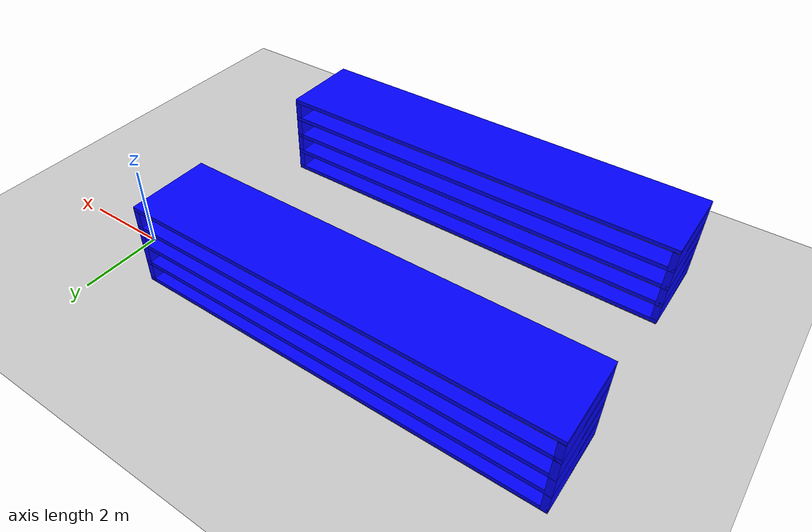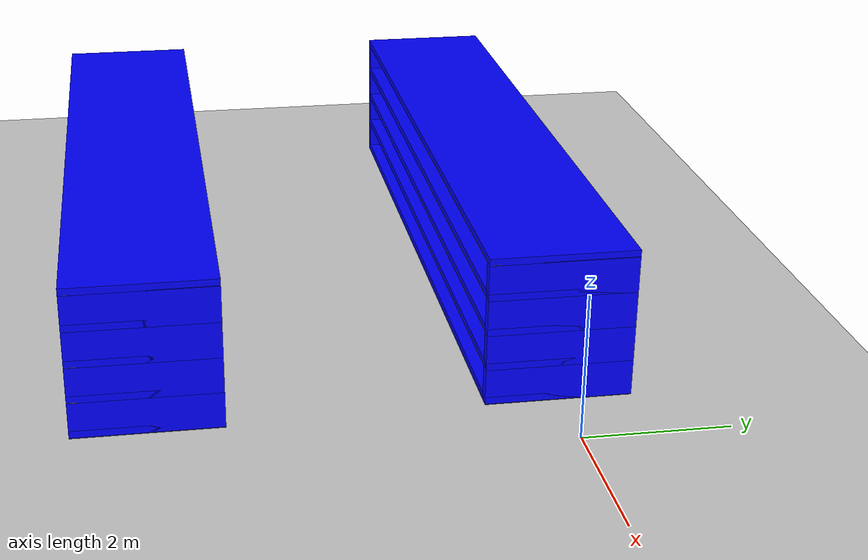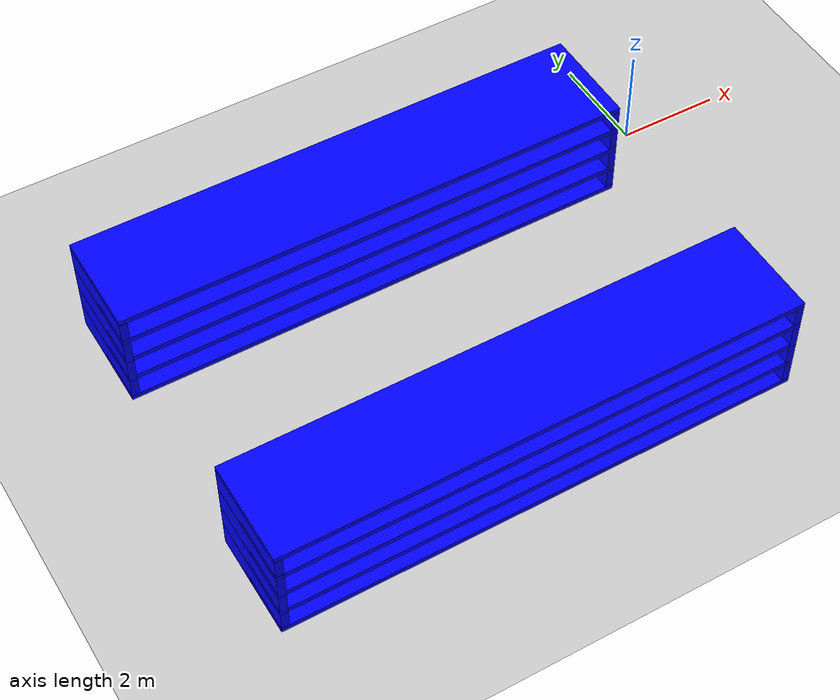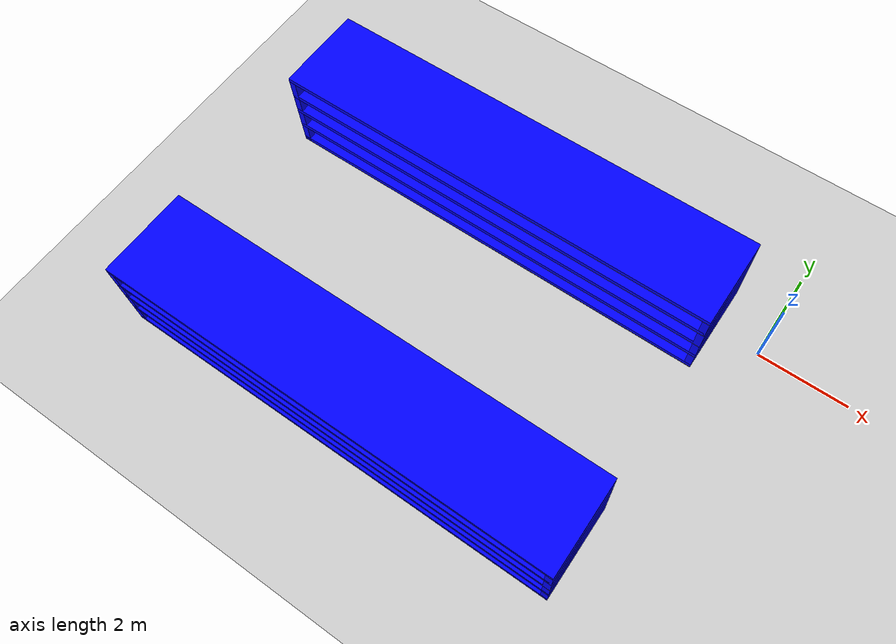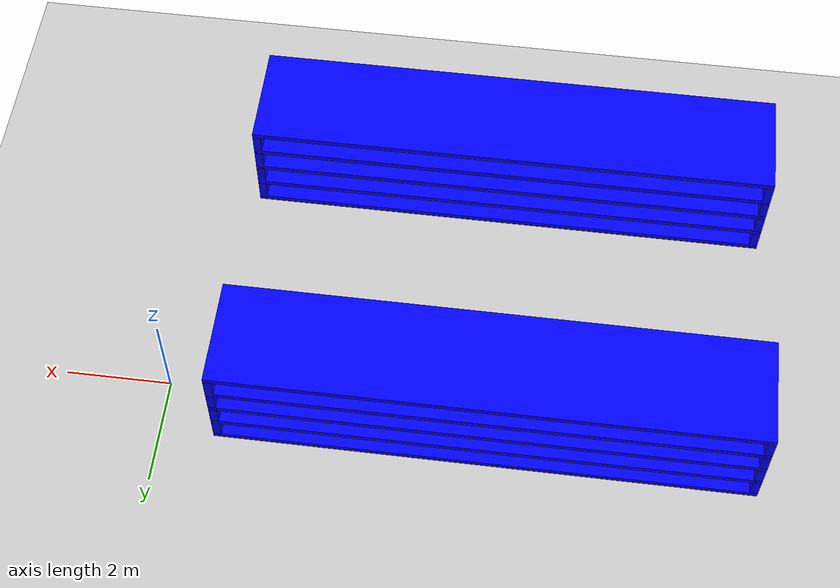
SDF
<sdf version="1.6">
 <world name="default">
  <model name="ground_plane">
   <static>1</static>
   <link name="link">
    <collision name="collision">
     <geometry><plane><normal>0 0 1</normal><size>100 100</size></plane></geometry>
     <surface><friction><ode><mu>100</mu><mu2>50</mu2></ode></friction></surface>
    </collision>
    <visual name="visual">
     <cast_shadows>0</cast_shadows>
     <geometry><plane><normal>0 0 1</normal><size>100 100</size></plane></geometry>
     <material>
      <script><uri>file://media/materials/scripts/gazebo.material</uri><name>Gazebo/Grey</name></script>
     </material>
    </visual>
   </link>
  </model>
  <model name="blue_shelf">
   <pose>-6.00982 -0.023754 0 0 -0 0</pose>
   <link name="Floor_18">
    <collision name="Floor_18_Collision">
     <geometry><box><size>10 2 0.1</size></box></geometry>
     <pose>0 0 0.05 0 -0 0</pose>
    </collision>
    <visual name="Floor_18_Visual">
     <pose>0 0 0.05 0 -0 0</pose>
     <geometry><box><size>10 2 0.1</size></box></geometry>
     <material>
      <script><uri>file://media/materials/scripts/gazebo.material</uri><name>Gazebo/Grey</name></script>
      <ambient>0 0 1 1</ambient>
     </material>
    </visual>
    <pose>0 0 0.01 0 -0 0</pose>
   </link>
   <link name="Floor_23">
    <collision name="Floor_23_Collision">
     <geometry><box><size>10 2 0.1</size></box></geometry>
     <pose>0 0 0.05 0 -0 0</pose>
    </collision>
    <visual name="Floor_23_Visual">
     <pose>0 0 0.05 0 -0 0</pose>
     <geometry><box><size>10 2 0.1</size></box></geometry>
     <material>
      <script><uri>file://media/materials/scripts/gazebo.material</uri><name>Gazebo/Grey</name></script>
      <ambient>0 0 1 1</ambient>
     </material>
    </visual>
    <pose>0 0 0.51 0 -0 0</pose>
   </link>
   <link name="Floor_24">
    <collision name="Floor_24_Collision">
     <geometry><box><size>10 2 0.1</size></box></geometry>
     <pose>0 0 0.05 0 -0 0</pose>
    </collision>
    <visual name="Floor_24_Visual">
     <pose>0 0 0.05 0 -0 0</pose>
     <geometry><box><size>10 2 0.1</size></box></geometry>
     <material>
      <script><uri>file://media/materials/scripts/gazebo.material</uri><name>Gazebo/Grey</name></script>
      <ambient>0 0 1 1</ambient>
     </material>
    </visual>
    <pose>0 0 1.01 0 -0 0</pose>
   </link>
   <link name="Floor_25">
    <collision name="Floor_25_Collision">
     <geometry><box><size>10 2 0.1</size></box></geometry>
     <pose>0 0 0.05 0 -0 0</pose>
    </collision>
    <visual name="Floor_25_Visual">
     <pose>0 0 0.05 0 -0 0</pose>
     <geometry><box><size>10 2 0.1</size></box></geometry>
     <material>
      <script><uri>file://media/materials/scripts/gazebo.material</uri><name>Gazebo/Grey</name></script>
      <ambient>0 0 1 1</ambient>
     </material>
    </visual>
    <pose>0 0 1.51 0 -0 0</pose>
   </link>
   <link name="Floor_26">
    <collision name="Floor_26_Collision">
     <geometry><box><size>10 2 0.1</size></box></geometry>
     <pose>0 0 0.05 0 -0 0</pose>
    </collision>
    <visual name="Floor_26_Visual">
     <pose>0 0 0.05 0 -0 0</pose>
     <geometry><box><size>10 2 0.1</size></box></geometry>
     <material>
      <script><uri>file://media/materials/scripts/gazebo.material</uri><name>Gazebo/Grey</name></script>
      <ambient>0 0 1 1</ambient>
     </material>
    </visual>
    <pose>0 0 2.01 0 -0 0</pose>
   </link>
   <link name="Wall_111">
    <collision name="Wall_111_Collision">
     <geometry><box><size>10 0.15 0.01</size></box></geometry>
     <pose>0 0 0.005 0 -0 0</pose>
    </collision>
    <visual name="Wall_111_Visual">
     <pose>0 0 0.005 0 -0 0</pose>
     <geometry><box><size>10 0.15 0.01</size></box></geometry>
     <material>
      <script><uri>file://media/materials/scripts/gazebo.material</uri><name>Gazebo/Grey</name></script>
      <ambient>1 1 1 1</ambient>
     </material>
    </visual>
    <pose>0 0.925 0.51 0 -0 0</pose>
   </link>
   <link name="Wall_112">
    <collision name="Wall_112_Collision">
     <geometry><box><size>2 0.15 0.5</size></box></geometry>
     <pose>0 0 0.25 0 -0 0</pose>
    </collision>
    <visual name="Wall_112_Visual">
     <pose>0 0 0.25 0 -0 0</pose>
     <geometry><box><size>2 0.15 0.5</size></box></geometry>
     <material>
      <script><uri>file://media/materials/scripts/gazebo.material</uri><name>Gazebo/Grey</name></script>
      <ambient>0 0 1 1</ambient>
     </material>
    </visual>
    <pose>4.925 0 0.51 0 0 -1.5708</pose>
   </link>
   <link name="Wall_113">
    <collision name="Wall_113_Collision">
     <geometry><box><size>10 0.15 0.01</size></box></geometry>
     <pose>0 0 0.005 0 -0 0</pose>
    </collision>
    <visual name="Wall_113_Visual">
     <pose>0 0 0.005 0 -0 0</pose>
     <geometry><box><size>10 0.15 0.01</size></box></geometry>
     <material>
      <script><uri>file://media/materials/scripts/gazebo.material</uri><name>Gazebo/Grey</name></script>
      <ambient>1 1 1 1</ambient>
     </material>
    </visual>
    <pose>0 -0.925 0.51 0 -0 3.14159</pose>
   </link>
   <link name="Wall_114">
    <collision name="Wall_114_Collision">
     <geometry><box><size>2 0.15 0.5</size></box></geometry>
     <pose>0 0 0.25 0 -0 0</pose>
    </collision>
    <visual name="Wall_114_Visual">
     <pose>0 0 0.25 0 -0 0</pose>
     <geometry><box><size>2 0.15 0.5</size></box></geometry>
     <material>
      <script><uri>file://media/materials/scripts/gazebo.material</uri><name>Gazebo/Grey</name></script>
      <ambient>0 0 1 1</ambient>
     </material>
    </visual>
    <pose>-4.925 0 0.51 0 -0 1.5708</pose>
   </link>
   <link name="Wall_115">
    <collision name="Wall_115_Collision">
     <geometry><box><size>10 0.15 0.01</size></box></geometry>
     <pose>0 0 0.005 0 -0 0</pose>
    </collision>
    <visual name="Wall_115_Visual">
     <pose>0 0 0.005 0 -0 0</pose>
     <geometry><box><size>10 0.15 0.01</size></box></geometry>
     <material>
      <script><uri>file://media/materials/scripts/gazebo.material</uri><name>Gazebo/Grey</name></script>
      <ambient>1 1 1 1</ambient>
     </material>
    </visual>
    <pose>0 0.925 1.01 0 -0 0</pose>
   </link>
   <link name="Wall_116">
    <collision name="Wall_116_Collision">
     <geometry><box><size>2 0.15 0.5</size></box></geometry>
     <pose>0 0 0.25 0 -0 0</pose>
    </collision>
    <visual name="Wall_116_Visual">
     <pose>0 0 0.25 0 -0 0</pose>
     <geometry><box><size>2 0.15 0.5</size></box></geometry>
     <material>
      <script><uri>file://media/materials/scripts/gazebo.material</uri><name>Gazebo/Grey</name></script>
      <ambient>0 0 1 1</ambient>
     </material>
    </visual>
    <pose>4.925 0 1.01 0 0 -1.5708</pose>
   </link>
   <link name="Wall_117">
    <collision name="Wall_117_Collision">
     <geometry><box><size>10 0.15 0.01</size></box></geometry>
     <pose>0 0 0.005 0 -0 0</pose>
    </collision>
    <visual name="Wall_117_Visual">
     <pose>0 0 0.005 0 -0 0</pose>
     <geometry><box><size>10 0.15 0.01</size></box></geometry>
     <material>
      <script><uri>file://media/materials/scripts/gazebo.material</uri><name>Gazebo/Grey</name></script>
      <ambient>1 1 1 1</ambient>
     </material>
    </visual>
    <pose>0 -0.925 1.01 0 -0 3.14159</pose>
   </link>
   <link name="Wall_118">
    <collision name="Wall_118_Collision">
     <geometry><box><size>2 0.15 0.5</size></box></geometry>
     <pose>0 0 0.25 0 -0 0</pose>
    </collision>
    <visual name="Wall_118_Visual">
     <pose>0 0 0.25 0 -0 0</pose>
     <geometry><box><size>2 0.15 0.5</size></box></geometry>
     <material>
      <script><uri>file://media/materials/scripts/gazebo.material</uri><name>Gazebo/Grey</name></script>
      <ambient>0 0 1 1</ambient>
     </material>
    </visual>
    <pose>-4.925 0 1.01 0 -0 1.5708</pose>
   </link>
   <link name="Wall_119">
    <collision name="Wall_119_Collision">
     <geometry><box><size>10 0.15 0.01</size></box></geometry>
     <pose>0 0 0.005 0 -0 0</pose>
    </collision>
    <visual name="Wall_119_Visual">
     <pose>0 0 0.005 0 -0 0</pose>
     <geometry><box><size>10 0.15 0.01</size></box></geometry>
     <material>
      <script><uri>file://media/materials/scripts/gazebo.material</uri><name>Gazebo/Grey</name></script>
      <ambient>1 1 1 1</ambient>
     </material>
    </visual>
    <pose>0 0.925 1.51 0 -0 0</pose>
   </link>
   <link name="Wall_120">
    <collision name="Wall_120_Collision">
     <geometry><box><size>2 0.15 0.5</size></box></geometry>
     <pose>0 0 0.25 0 -0 0</pose>
    </collision>
    <visual name="Wall_120_Visual">
     <pose>0 0 0.25 0 -0 0</pose>
     <geometry><box><size>2 0.15 0.5</size></box></geometry>
     <material>
      <script><uri>file://media/materials/scripts/gazebo.material</uri><name>Gazebo/Grey</name></script>
      <ambient>0 0 1 1</ambient>
     </material>
    </visual>
    <pose>4.925 0 1.51 0 0 -1.5708</pose>
   </link>
   <link name="Wall_121">
    <collision name="Wall_121_Collision">
     <geometry><box><size>10 0.15 0.01</size></box></geometry>
     <pose>0 0 0.005 0 -0 0</pose>
    </collision>
    <visual name="Wall_121_Visual">
     <pose>0 0 0.005 0 -0 0</pose>
     <geometry><box><size>10 0.15 0.01</size></box></geometry>
     <material>
      <script><uri>file://media/materials/scripts/gazebo.material</uri><name>Gazebo/Grey</name></script>
      <ambient>1 1 1 1</ambient>
     </material>
    </visual>
    <pose>0 -0.925 1.51 0 -0 3.14159</pose>
   </link>
   <link name="Wall_122">
    <collision name="Wall_122_Collision">
     <geometry><box><size>2 0.15 0.5</size></box></geometry>
     <pose>0 0 0.25 0 -0 0</pose>
    </collision>
    <visual name="Wall_122_Visual">
     <pose>0 0 0.25 0 -0 0</pose>
     <geometry><box><size>2 0.15 0.5</size></box></geometry>
     <material>
      <script><uri>file://media/materials/scripts/gazebo.material</uri><name>Gazebo/Grey</name></script>
      <ambient>0 0 1 1</ambient>
     </material>
    </visual>
    <pose>-4.925 0 1.51 0 -0 1.5708</pose>
   </link>
   <link name="Wall_123">
    <collision name="Wall_123_Collision">
     <geometry><box><size>10 0.15 0.01</size></box></geometry>
     <pose>0 0 0.005 0 -0 0</pose>
    </collision>
    <visual name="Wall_123_Visual">
     <pose>0 0 0.005 0 -0 0</pose>
     <geometry><box><size>10 0.15 0.01</size></box></geometry>
     <material>
      <script><uri>file://media/materials/scripts/gazebo.material</uri><name>Gazebo/Grey</name></script>
      <ambient>1 1 1 1</ambient>
     </material>
    </visual>
    <pose>0 0.925 2.01 0 -0 0</pose>
   </link>
   <link name="Wall_124">
    <collision name="Wall_124_Collision">
     <geometry><box><size>2 0.15 0.01</size></box></geometry>
     <pose>0 0 0.005 0 -0 0</pose>
    </collision>
    <visual name="Wall_124_Visual">
     <pose>0 0 0.005 0 -0 0</pose>
     <geometry><box><size>2 0.15 0.01</size></box></geometry>
     <material>
      <script><uri>file://media/materials/scripts/gazebo.material</uri><name>Gazebo/Grey</name></script>
      <ambient>0 0 1 1</ambient>
     </material>
    </visual>
    <pose>4.925 0 2.01 0 0 -1.5708</pose>
   </link>
   <link name="Wall_125">
    <collision name="Wall_125_Collision">
     <geometry><box><size>10 0.15 0.01</size></box></geometry>
     <pose>0 0 0.005 0 -0 0</pose>
    </collision>
    <visual name="Wall_125_Visual">
     <pose>0 0 0.005 0 -0 0</pose>
     <geometry><box><size>10 0.15 0.01</size></box></geometry>
     <material>
      <script><uri>file://media/materials/scripts/gazebo.material</uri><name>Gazebo/Grey</name></script>
      <ambient>1 1 1 1</ambient>
     </material>
    </visual>
    <pose>0 -0.925 2.01 0 -0 3.14159</pose>
   </link>
   <link name="Wall_126">
    <collision name="Wall_126_Collision">
     <geometry><box><size>2 0.15 0.01</size></box></geometry>
     <pose>0 0 0.005 0 -0 0</pose>
    </collision>
    <visual name="Wall_126_Visual">
     <pose>0 0 0.005 0 -0 0</pose>
     <geometry><box><size>2 0.15 0.01</size></box></geometry>
     <material>
      <script><uri>file://media/materials/scripts/gazebo.material</uri><name>Gazebo/Grey</name></script>
      <ambient>0 0 1 1</ambient>
     </material>
    </visual>
    <pose>-4.925 0 2.01 0 -0 1.5708</pose>
   </link>
   <link name="Wall_60">
    <collision name="Wall_60_Collision">
     <geometry><box><size>10 0.15 0.01</size></box></geometry>
     <pose>0 0 0.005 0 -0 0</pose>
    </collision>
    <visual name="Wall_60_Visual">
     <pose>0 0 0.005 0 -0 0</pose>
     <geometry><box><size>10 0.15 0.01</size></box></geometry>
     <material>
      <script><uri>file://media/materials/scripts/gazebo.material</uri><name>Gazebo/Grey</name></script>
      <ambient>0 0 0.498039 1</ambient>
     </material>
    </visual>
    <pose>0 0.925 0 0 -0 0</pose>
   </link>
   <link name="Wall_61">
    <collision name="Wall_61_Collision">
     <geometry><box><size>2 0.15 0.01</size></box></geometry>
     <pose>0 0 0.005 0 -0 0</pose>
    </collision>
    <visual name="Wall_61_Visual">
     <pose>0 0 0.005 0 -0 0</pose>
     <geometry><box><size>2 0.15 0.01</size></box></geometry>
     <material>
      <script><uri>file://media/materials/scripts/gazebo.material</uri><name>Gazebo/Grey</name></script>
      <ambient>0 0 0.498039 1</ambient>
     </material>
    </visual>
    <pose>4.925 0 0 0 0 -1.5708</pose>
   </link>
   <link name="Wall_62">
    <collision name="Wall_62_Collision">
     <geometry><box><size>10 0.15 0.01</size></box></geometry>
     <pose>0 0 0.005 0 -0 0</pose>
    </collision>
    <visual name="Wall_62_Visual">
     <pose>0 0 0.005 0 -0 0</pose>
     <geometry><box><size>10 0.15 0.01</size></box></geometry>
     <material>
      <script><uri>file://media/materials/scripts/gazebo.material</uri><name>Gazebo/Grey</name></script>
      <ambient>0 0 0.498039 1</ambient>
     </material>
    </visual>
    <pose>0 -0.925 0 0 -0 3.14159</pose>
   </link>
   <link name="Wall_63">
    <collision name="Wall_63_Collision">
     <geometry><box><size>2 0.15 0.01</size></box></geometry>
     <pose>0 0 0.005 0 -0 0</pose>
    </collision>
    <visual name="Wall_63_Visual">
     <pose>0 0 0.005 0 -0 0</pose>
     <geometry><box><size>2 0.15 0.01</size></box></geometry>
     <material>
      <script><uri>file://media/materials/scripts/gazebo.material</uri><name>Gazebo/Grey</name></script>
      <ambient>0 0 0.498039 1</ambient>
     </material>
    </visual>
    <pose>-4.925 0 0 0 -0 1.5708</pose>
   </link>
   <link name="Wall_91">
    <collision name="Wall_91_Collision">
     <geometry><box><size>10 0.15 0.01</size></box></geometry>
     <pose>0 0 0.005 0 -0 0</pose>
    </collision>
    <visual name="Wall_91_Visual">
     <pose>0 0 0.005 0 -0 0</pose>
     <geometry><box><size>10 0.15 0.01</size></box></geometry>
     <material>
      <script><uri>file://media/materials/scripts/gazebo.material</uri><name>Gazebo/Grey</name></script>
      <ambient>1 1 1 1</ambient>
     </material>
    </visual>
    <pose>0 0.925 0.01 0 -0 0</pose>
   </link>
   <link name="Wall_92">
    <collision name="Wall_92_Collision">
     <geometry><box><size>2 0.15 0.5</size></box></geometry>
     <pose>0 0 0.25 0 -0 0</pose>
    </collision>
    <visual name="Wall_92_Visual">
     <pose>0 0 0.25 0 -0 0</pose>
     <geometry><box><size>2 0.15 0.5</size></box></geometry>
     <material>
      <script><uri>file://media/materials/scripts/gazebo.material</uri><name>Gazebo/Grey</name></script>
      <ambient>0 0 1 1</ambient>
     </material>
    </visual>
    <pose>4.925 0 0.01 0 0 -1.5708</pose>
   </link>
   <link name="Wall_93">
    <collision name="Wall_93_Collision">
     <geometry><box><size>10 0.15 0.01</size></box></geometry>
     <pose>0 0 0.005 0 -0 0</pose>
    </collision>
    <visual name="Wall_93_Visual">
     <pose>0 0 0.005 0 -0 0</pose>
     <geometry><box><size>10 0.15 0.01</size></box></geometry>
     <material>
      <script><uri>file://media/materials/scripts/gazebo.material</uri><name>Gazebo/Grey</name></script>
      <ambient>1 1 1 1</ambient>
     </material>
    </visual>
    <pose>0 -0.925 0.01 0 -0 3.14159</pose>
   </link>
   <link name="Wall_94">
    <collision name="Wall_94_Collision">
     <geometry><box><size>2 0.15 0.5</size></box></geometry>
     <pose>0 0 0.25 0 -0 0</pose>
    </collision>
    <visual name="Wall_94_Visual">
     <pose>0 0 0.25 0 -0 0</pose>
     <geometry><box><size>2 0.15 0.5</size></box></geometry>
     <material>
      <script><uri>file://media/materials/scripts/gazebo.material</uri><name>Gazebo/Grey</name></script>
      <ambient>0 0 1 1</ambient>
     </material>
    </visual>
    <pose>-4.925 0 0.01 0 -0 1.5708</pose>
   </link>
   <static>1</static>
  </model>
  <model name="blue_shelf_1">
   <pose>-5.9319 -5.4498 0 0 -0 0</pose>
   <link name="Floor_18">
    <collision name="Floor_18_Collision">
     <geometry><box><size>10 2 0.1</size></box></geometry>
     <pose>0 0 0.05 0 -0 0</pose>
    </collision>
    <visual name="Floor_18_Visual">
     <pose>0 0 0.05 0 -0 0</pose>
     <geometry><box><size>10 2 0.1</size></box></geometry>
     <material>
      <script><uri>file://media/materials/scripts/gazebo.material</uri><name>Gazebo/Grey</name></script>
      <ambient>0 0 1 1</ambient>
     </material>
    </visual>
    <pose>0 0 0.01 0 -0 0</pose>
   </link>
   <link name="Floor_23">
    <collision name="Floor_23_Collision">
     <geometry><box><size>10 2 0.1</size></box></geometry>
     <pose>0 0 0.05 0 -0 0</pose>
    </collision>
    <visual name="Floor_23_Visual">
     <pose>0 0 0.05 0 -0 0</pose>
     <geometry><box><size>10 2 0.1</size></box></geometry>
     <material>
      <script><uri>file://media/materials/scripts/gazebo.material</uri><name>Gazebo/Grey</name></script>
      <ambient>0 0 1 1</ambient>
     </material>
    </visual>
    <pose>0 0 0.51 0 -0 0</pose>
   </link>
   <link name="Floor_24">
    <collision name="Floor_24_Collision">
     <geometry><box><size>10 2 0.1</size></box></geometry>
     <pose>0 0 0.05 0 -0 0</pose>
    </collision>
    <visual name="Floor_24_Visual">
     <pose>0 0 0.05 0 -0 0</pose>
     <geometry><box><size>10 2 0.1</size></box></geometry>
     <material>
      <script><uri>file://media/materials/scripts/gazebo.material</uri><name>Gazebo/Grey</name></script>
      <ambient>0 0 1 1</ambient>
     </material>
    </visual>
    <pose>0 0 1.01 0 -0 0</pose>
   </link>
   <link name="Floor_25">
    <collision name="Floor_25_Collision">
     <geometry><box><size>10 2 0.1</size></box></geometry>
     <pose>0 0 0.05 0 -0 0</pose>
    </collision>
    <visual name="Floor_25_Visual">
     <pose>0 0 0.05 0 -0 0</pose>
     <geometry><box><size>10 2 0.1</size></box></geometry>
     <material>
      <script><uri>file://media/materials/scripts/gazebo.material</uri><name>Gazebo/Grey</name></script>
      <ambient>0 0 1 1</ambient>
     </material>
    </visual>
    <pose>0 0 1.51 0 -0 0</pose>
   </link>
   <link name="Floor_26">
    <collision name="Floor_26_Collision">
     <geometry><box><size>10 2 0.1</size></box></geometry>
     <pose>0 0 0.05 0 -0 0</pose>
    </collision>
    <visual name="Floor_26_Visual">
     <pose>0 0 0.05 0 -0 0</pose>
     <geometry><box><size>10 2 0.1</size></box></geometry>
     <material>
      <script><uri>file://media/materials/scripts/gazebo.material</uri><name>Gazebo/Grey</name></script>
      <ambient>0 0 1 1</ambient>
     </material>
    </visual>
    <pose>0 0 2.01 0 -0 0</pose>
   </link>
   <link name="Wall_111">
    <collision name="Wall_111_Collision">
     <geometry><box><size>10 0.15 0.01</size></box></geometry>
     <pose>0 0 0.005 0 -0 0</pose>
    </collision>
    <visual name="Wall_111_Visual">
     <pose>0 0 0.005 0 -0 0</pose>
     <geometry><box><size>10 0.15 0.01</size></box></geometry>
     <material>
      <script><uri>file://media/materials/scripts/gazebo.material</uri><name>Gazebo/Grey</name></script>
      <ambient>1 1 1 1</ambient>
     </material>
    </visual>
    <pose>0 0.925 0.51 0 -0 0</pose>
   </link>
   <link name="Wall_112">
    <collision name="Wall_112_Collision">
     <geometry><box><size>2 0.15 0.5</size></box></geometry>
     <pose>0 0 0.25 0 -0 0</pose>
    </collision>
    <visual name="Wall_112_Visual">
     <pose>0 0 0.25 0 -0 0</pose>
     <geometry><box><size>2 0.15 0.5</size></box></geometry>
     <material>
      <script><uri>file://media/materials/scripts/gazebo.material</uri><name>Gazebo/Grey</name></script>
      <ambient>0 0 1 1</ambient>
     </material>
    </visual>
    <pose>4.925 0 0.51 0 0 -1.5708</pose>
   </link>
   <link name="Wall_113">
    <collision name="Wall_113_Collision">
     <geometry><box><size>10 0.15 0.01</size></box></geometry>
     <pose>0 0 0.005 0 -0 0</pose>
    </collision>
    <visual name="Wall_113_Visual">
     <pose>0 0 0.005 0 -0 0</pose>
     <geometry><box><size>10 0.15 0.01</size></box></geometry>
     <material>
      <script><uri>file://media/materials/scripts/gazebo.material</uri><name>Gazebo/Grey</name></script>
      <ambient>1 1 1 1</ambient>
     </material>
    </visual>
    <pose>0 -0.925 0.51 0 -0 3.14159</pose>
   </link>
   <link name="Wall_114">
    <collision name="Wall_114_Collision">
     <geometry><box><size>2 0.15 0.5</size></box></geometry>
     <pose>0 0 0.25 0 -0 0</pose>
    </collision>
    <visual name="Wall_114_Visual">
     <pose>0 0 0.25 0 -0 0</pose>
     <geometry><box><size>2 0.15 0.5</size></box></geometry>
     <material>
      <script><uri>file://media/materials/scripts/gazebo.material</uri><name>Gazebo/Grey</name></script>
      <ambient>0 0 1 1</ambient>
     </material>
    </visual>
    <pose>-4.925 0 0.51 0 -0 1.5708</pose>
   </link>
   <link name="Wall_115">
    <collision name="Wall_115_Collision">
     <geometry><box><size>10 0.15 0.01</size></box></geometry>
     <pose>0 0 0.005 0 -0 0</pose>
    </collision>
    <visual name="Wall_115_Visual">
     <pose>0 0 0.005 0 -0 0</pose>
     <geometry><box><size>10 0.15 0.01</size></box></geometry>
     <material>
      <script><uri>file://media/materials/scripts/gazebo.material</uri><name>Gazebo/Grey</name></script>
      <ambient>1 1 1 1</ambient>
     </material>
    </visual>
    <pose>0 0.925 1.01 0 -0 0</pose>
   </link>
   <link name="Wall_116">
    <collision name="Wall_116_Collision">
     <geometry><box><size>2 0.15 0.5</size></box></geometry>
     <pose>0 0 0.25 0 -0 0</pose>
    </collision>
    <visual name="Wall_116_Visual">
     <pose>0 0 0.25 0 -0 0</pose>
     <geometry><box><size>2 0.15 0.5</size></box></geometry>
     <material>
      <script><uri>file://media/materials/scripts/gazebo.material</uri><name>Gazebo/Grey</name></script>
      <ambient>0 0 1 1</ambient>
     </material>
    </visual>
    <pose>4.925 0 1.01 0 0 -1.5708</pose>
   </link>
   <link name="Wall_117">
    <collision name="Wall_117_Collision">
     <geometry><box><size>10 0.15 0.01</size></box></geometry>
     <pose>0 0 0.005 0 -0 0</pose>
    </collision>
    <visual name="Wall_117_Visual">
     <pose>0 0 0.005 0 -0 0</pose>
     <geometry><box><size>10 0.15 0.01</size></box></geometry>
     <material>
      <script><uri>file://media/materials/scripts/gazebo.material</uri><name>Gazebo/Grey</name></script>
      <ambient>1 1 1 1</ambient>
     </material>
    </visual>
    <pose>0 -0.925 1.01 0 -0 3.14159</pose>
   </link>
   <link name="Wall_118">
    <collision name="Wall_118_Collision">
     <geometry><box><size>2 0.15 0.5</size></box></geometry>
     <pose>0 0 0.25 0 -0 0</pose>
    </collision>
    <visual name="Wall_118_Visual">
     <pose>0 0 0.25 0 -0 0</pose>
     <geometry><box><size>2 0.15 0.5</size></box></geometry>
     <material>
      <script><uri>file://media/materials/scripts/gazebo.material</uri><name>Gazebo/Grey</name></script>
      <ambient>0 0 1 1</ambient>
     </material>
    </visual>
    <pose>-4.925 0 1.01 0 -0 1.5708</pose>
   </link>
   <link name="Wall_119">
    <collision name="Wall_119_Collision">
     <geometry><box><size>10 0.15 0.01</size></box></geometry>
     <pose>0 0 0.005 0 -0 0</pose>
    </collision>
    <visual name="Wall_119_Visual">
     <pose>0 0 0.005 0 -0 0</pose>
     <geometry><box><size>10 0.15 0.01</size></box></geometry>
     <material>
      <script><uri>file://media/materials/scripts/gazebo.material</uri><name>Gazebo/Grey</name></script>
      <ambient>1 1 1 1</ambient>
     </material>
    </visual>
    <pose>0 0.925 1.51 0 -0 0</pose>
   </link>
   <link name="Wall_120">
    <collision name="Wall_120_Collision">
     <geometry><box><size>2 0.15 0.5</size></box></geometry>
     <pose>0 0 0.25 0 -0 0</pose>
    </collision>
    <visual name="Wall_120_Visual">
     <pose>0 0 0.25 0 -0 0</pose>
     <geometry><box><size>2 0.15 0.5</size></box></geometry>
     <material>
      <script><uri>file://media/materials/scripts/gazebo.material</uri><name>Gazebo/Grey</name></script>
      <ambient>0 0 1 1</ambient>
     </material>
    </visual>
    <pose>4.925 0 1.51 0 0 -1.5708</pose>
   </link>
   <link name="Wall_121">
    <collision name="Wall_121_Collision">
     <geometry><box><size>10 0.15 0.01</size></box></geometry>
     <pose>0 0 0.005 0 -0 0</pose>
    </collision>
    <visual name="Wall_121_Visual">
     <pose>0 0 0.005 0 -0 0</pose>
     <geometry><box><size>10 0.15 0.01</size></box></geometry>
     <material>
      <script><uri>file://media/materials/scripts/gazebo.material</uri><name>Gazebo/Grey</name></script>
      <ambient>1 1 1 1</ambient>
     </material>
    </visual>
    <pose>0 -0.925 1.51 0 -0 3.14159</pose>
   </link>
   <link name="Wall_122">
    <collision name="Wall_122_Collision">
     <geometry><box><size>2 0.15 0.5</size></box></geometry>
     <pose>0 0 0.25 0 -0 0</pose>
    </collision>
    <visual name="Wall_122_Visual">
     <pose>0 0 0.25 0 -0 0</pose>
     <geometry><box><size>2 0.15 0.5</size></box></geometry>
     <material>
      <script><uri>file://media/materials/scripts/gazebo.material</uri><name>Gazebo/Grey</name></script>
      <ambient>0 0 1 1</ambient>
     </material>
    </visual>
    <pose>-4.925 0 1.51 0 -0 1.5708</pose>
   </link>
   <link name="Wall_123">
    <collision name="Wall_123_Collision">
     <geometry><box><size>10 0.15 0.01</size></box></geometry>
     <pose>0 0 0.005 0 -0 0</pose>
    </collision>
    <visual name="Wall_123_Visual">
     <pose>0 0 0.005 0 -0 0</pose>
     <geometry><box><size>10 0.15 0.01</size></box></geometry>
     <material>
      <script><uri>file://media/materials/scripts/gazebo.material</uri><name>Gazebo/Grey</name></script>
      <ambient>1 1 1 1</ambient>
     </material>
    </visual>
    <pose>0 0.925 2.01 0 -0 0</pose>
   </link>
   <link name="Wall_124">
    <collision name="Wall_124_Collision">
     <geometry><box><size>2 0.15 0.01</size></box></geometry>
     <pose>0 0 0.005 0 -0 0</pose>
    </collision>
    <visual name="Wall_124_Visual">
     <pose>0 0 0.005 0 -0 0</pose>
     <geometry><box><size>2 0.15 0.01</size></box></geometry>
     <material>
      <script><uri>file://media/materials/scripts/gazebo.material</uri><name>Gazebo/Grey</name></script>
      <ambient>0 0 1 1</ambient>
     </material>
    </visual>
    <pose>4.925 0 2.01 0 0 -1.5708</pose>
   </link>
   <link name="Wall_125">
    <collision name="Wall_125_Collision">
     <geometry><box><size>10 0.15 0.01</size></box></geometry>
     <pose>0 0 0.005 0 -0 0</pose>
    </collision>
    <visual name="Wall_125_Visual">
     <pose>0 0 0.005 0 -0 0</pose>
     <geometry><box><size>10 0.15 0.01</size></box></geometry>
     <material>
      <script><uri>file://media/materials/scripts/gazebo.material</uri><name>Gazebo/Grey</name></script>
      <ambient>1 1 1 1</ambient>
     </material>
    </visual>
    <pose>0 -0.925 2.01 0 -0 3.14159</pose>
   </link>
   <link name="Wall_126">
    <collision name="Wall_126_Collision">
     <geometry><box><size>2 0.15 0.01</size></box></geometry>
     <pose>0 0 0.005 0 -0 0</pose>
    </collision>
    <visual name="Wall_126_Visual">
     <pose>0 0 0.005 0 -0 0</pose>
     <geometry><box><size>2 0.15 0.01</size></box></geometry>
     <material>
      <script><uri>file://media/materials/scripts/gazebo.material</uri><name>Gazebo/Grey</name></script>
      <ambient>0 0 1 1</ambient>
     </material>
    </visual>
    <pose>-4.925 0 2.01 0 -0 1.5708</pose>
   </link>
   <link name="Wall_60">
    <collision name="Wall_60_Collision">
     <geometry><box><size>10 0.15 0.01</size></box></geometry>
     <pose>0 0 0.005 0 -0 0</pose>
    </collision>
    <visual name="Wall_60_Visual">
     <pose>0 0 0.005 0 -0 0</pose>
     <geometry><box><size>10 0.15 0.01</size></box></geometry>
     <material>
      <script><uri>file://media/materials/scripts/gazebo.material</uri><name>Gazebo/Grey</name></script>
      <ambient>0 0 0.498039 1</ambient>
     </material>
    </visual>
    <pose>0 0.925 0 0 -0 0</pose>
   </link>
   <link name="Wall_61">
    <collision name="Wall_61_Collision">
     <geometry><box><size>2 0.15 0.01</size></box></geometry>
     <pose>0 0 0.005 0 -0 0</pose>
    </collision>
    <visual name="Wall_61_Visual">
     <pose>0 0 0.005 0 -0 0</pose>
     <geometry><box><size>2 0.15 0.01</size></box></geometry>
     <material>
      <script><uri>file://media/materials/scripts/gazebo.material</uri><name>Gazebo/Grey</name></script>
      <ambient>0 0 0.498039 1</ambient>
     </material>
    </visual>
    <pose>4.925 0 0 0 0 -1.5708</pose>
   </link>
   <link name="Wall_62">
    <collision name="Wall_62_Collision">
     <geometry><box><size>10 0.15 0.01</size></box></geometry>
     <pose>0 0 0.005 0 -0 0</pose>
    </collision>
    <visual name="Wall_62_Visual">
     <pose>0 0 0.005 0 -0 0</pose>
     <geometry><box><size>10 0.15 0.01</size></box></geometry>
     <material>
      <script><uri>file://media/materials/scripts/gazebo.material</uri><name>Gazebo/Grey</name></script>
      <ambient>0 0 0.498039 1</ambient>
     </material>
    </visual>
    <pose>0 -0.925 0 0 -0 3.14159</pose>
   </link>
   <link name="Wall_63">
    <collision name="Wall_63_Collision">
     <geometry><box><size>2 0.15 0.01</size></box></geometry>
     <pose>0 0 0.005 0 -0 0</pose>
    </collision>
    <visual name="Wall_63_Visual">
     <pose>0 0 0.005 0 -0 0</pose>
     <geometry><box><size>2 0.15 0.01</size></box></geometry>
     <material>
      <script><uri>file://media/materials/scripts/gazebo.material</uri><name>Gazebo/Grey</name></script>
      <ambient>0 0 0.498039 1</ambient>
     </material>
    </visual>
    <pose>-4.925 0 0 0 -0 1.5708</pose>
   </link>
   <link name="Wall_91">
    <collision name="Wall_91_Collision">
     <geometry><box><size>10 0.15 0.01</size></box></geometry>
     <pose>0 0 0.005 0 -0 0</pose>
    </collision>
    <visual name="Wall_91_Visual">
     <pose>0 0 0.005 0 -0 0</pose>
     <geometry><box><size>10 0.15 0.01</size></box></geometry>
     <material>
      <script><uri>file://media/materials/scripts/gazebo.material</uri><name>Gazebo/Grey</name></script>
      <ambient>1 1 1 1</ambient>
     </material>
    </visual>
    <pose>0 0.925 0.01 0 -0 0</pose>
   </link>
   <link name="Wall_92">
    <collision name="Wall_92_Collision">
     <geometry><box><size>2 0.15 0.5</size></box></geometry>
     <pose>0 0 0.25 0 -0 0</pose>
    </collision>
    <visual name="Wall_92_Visual">
     <pose>0 0 0.25 0 -0 0</pose>
     <geometry><box><size>2 0.15 0.5</size></box></geometry>
     <material>
      <script><uri>file://media/materials/scripts/gazebo.material</uri><name>Gazebo/Grey</name></script>
      <ambient>0 0 1 1</ambient>
     </material>
    </visual>
    <pose>4.925 0 0.01 0 0 -1.5708</pose>
   </link>
   <link name="Wall_93">
    <collision name="Wall_93_Collision">
     <geometry><box><size>10 0.15 0.01</size></box></geometry>
     <pose>0 0 0.005 0 -0 0</pose>
    </collision>
    <visual name="Wall_93_Visual">
     <pose>0 0 0.005 0 -0 0</pose>
     <geometry><box><size>10 0.15 0.01</size></box></geometry>
     <material>
      <script><uri>file://media/materials/scripts/gazebo.material</uri><name>Gazebo/Grey</name></script>
      <ambient>1 1 1 1</ambient>
     </material>
    </visual>
    <pose>0 -0.925 0.01 0 -0 3.14159</pose>
   </link>
   <link name="Wall_94">
    <collision name="Wall_94_Collision">
     <geometry><box><size>2 0.15 0.5</size></box></geometry>
     <pose>0 0 0.25 0 -0 0</pose>
    </collision>
    <visual name="Wall_94_Visual">
     <pose>0 0 0.25 0 -0 0</pose>
     <geometry><box><size>2 0.15 0.5</size></box></geometry>
     <material>
      <script><uri>file://media/materials/scripts/gazebo.material</uri><name>Gazebo/Grey</name></script>
      <ambient>0 0 1 1</ambient>
     </material>
    </visual>
    <pose>-4.925 0 0.01 0 -0 1.5708</pose>
   </link>
   <static>1</static>
  </model>
 </world>
</sdf>
